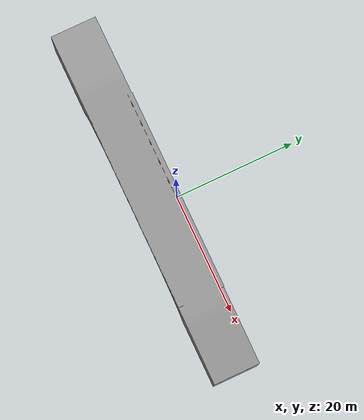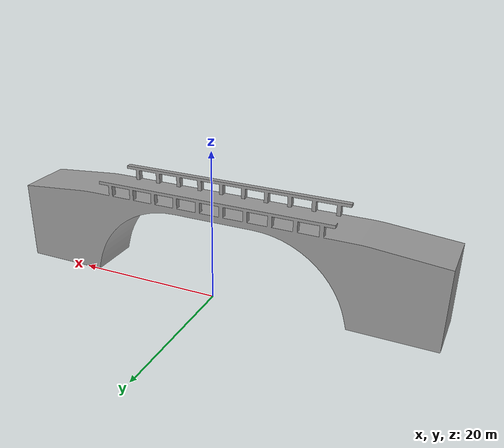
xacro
<?xml version="1.0"?>
<robot xmlns:xacro="http://www.ros.org/wiki/xacro" name="canal_bridge">

    <!-- Model parameters -->
    <xacro:arg name="model_name" default="canal_bridge"/>
    <xacro:arg name="mesh_scale_x" default="250.0"/>
    <xacro:arg name="mesh_scale_y" default="250.0"/>
    <xacro:arg name="mesh_scale_z" default="250.0"/>

    <!-- Box inertial macro -->
    <xacro:macro name="box_inertial" params="x y z mass *origin">
        <inertial>
        <mass value="${mass}" />
        <xacro:insert_block name="origin" />
        <inertia ixx="${0.0833333 * mass * (y*y + z*z)}" ixy="0.0" ixz="0.0"
            iyy="${0.0833333 * mass * (x*x + z*z)}" iyz="0.0"
            izz="${0.0833333 * mass * (x*x + y*y)}" />
        </inertial>
    </xacro:macro>

    <!-- URDF object macro -->
    <xacro:macro name="canal_bridge" params="model_prefix mesh_scale_x mesh_scale_y mesh_scale_z">

        <material name="White">
            <color rgba="0.6 0.6 0.6 1.0"/>
        </material>

        <link name="${model_prefix}base_footprint"/>
        <link name="${model_prefix}base_link">
            <xacro:box_inertial x="10" y="3" z="3" mass="1000">
                <origin xyz="0 0 0" rpy="0 0 0" />
            </xacro:box_inertial>
            <visual>
                <origin xyz="0 0 0" rpy="0 0 0"/>
                <geometry>
                    <mesh filename="package://iwt_gazebo_worlds/meshes/canal_bridge_2.stl" scale="${mesh_scale_x} ${mesh_scale_y} ${mesh_scale_z}"/>
                </geometry>
                <material name="White"/>
            </visual>
            <collision>
                <origin xyz="0 0 0" rpy="0 0 0"/>
                <geometry>
                    <mesh filename="package://iwt_gazebo_worlds/meshes/canal_bridge_2.stl" scale="${mesh_scale_x} ${mesh_scale_y} ${mesh_scale_z}"/>
                </geometry>
            </collision>
        </link>

        <joint name="${model_prefix}base_link_joint" type="fixed">
            <parent link="${model_prefix}base_footprint"/>
            <child link="${model_prefix}base_link"/>
        </joint>

        <!-- Gazebo properties -->
        <gazebo reference="${model_prefix}base_link">
            <material>Gazebo/Grey</material>
            <mu1>0.2</mu1>
            <mu2>0.2</mu2>
            <minDepth>0.001</minDepth>
            <maxVel>0</maxVel>
            <static>true</static>
            <!-- I added the gravity parameter to permit the bridges to remain a fixed position-->
            <gravity>0</gravity>
        </gazebo>

    </xacro:macro>

    <!-- Create macro -->
    <xacro:canal_bridge model_prefix="$(arg model_name)_"
                        mesh_scale_x="$(arg mesh_scale_x)"
                        mesh_scale_y="$(arg mesh_scale_y)"
                        mesh_scale_z="$(arg mesh_scale_z)"/>

</robot>
